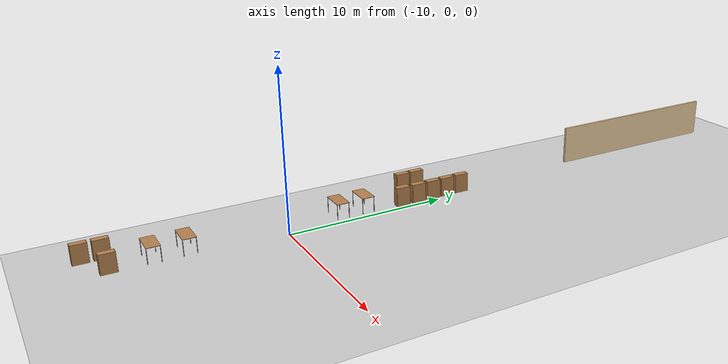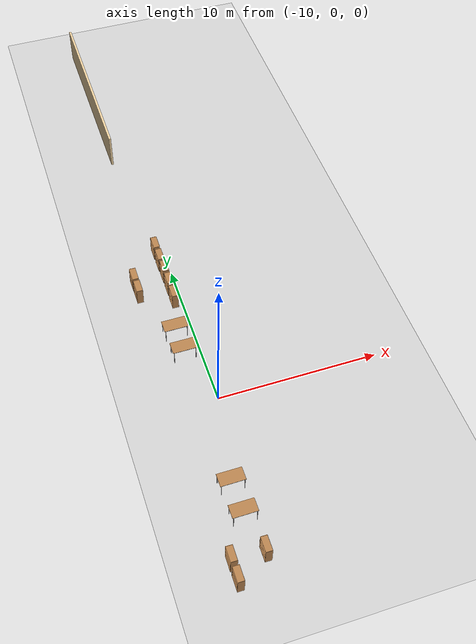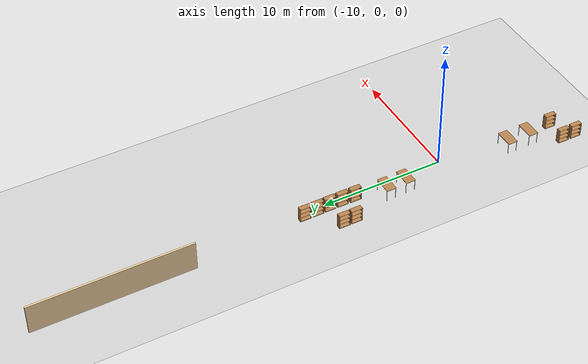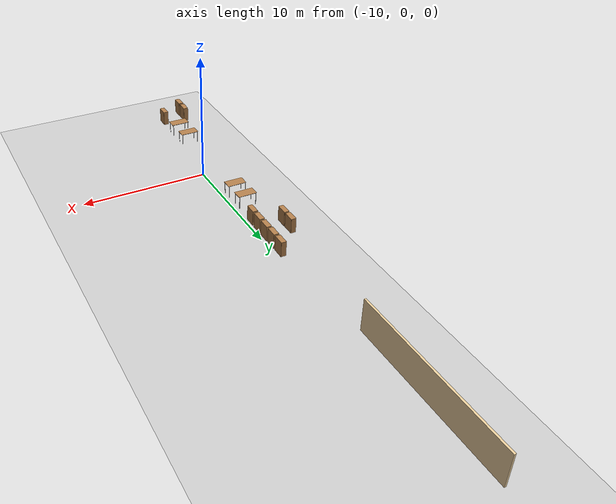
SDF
<sdf version="1.7">
 <world name="default">
  <model name="ground_plane">
   <static>1</static>
   <link name="link">
    <collision name="collision">
     <geometry><plane><normal>0 0 1</normal><size>100 100</size></plane></geometry>
     <surface>
      <contact><collide_bitmask>65535</collide_bitmask></contact>
      <friction><ode><mu>100</mu><mu2>50</mu2></ode></friction>
     </surface>
    </collision>
    <visual name="visual">
     <cast_shadows>0</cast_shadows>
     <geometry><plane><normal>0 0 1</normal><size>100 100</size></plane></geometry>
     <material>
      <script><uri>file://media/materials/scripts/gazebo.material</uri><name>Gazebo/Grey</name></script>
     </material>
    </visual>
   </link>
  </model>
  <model name="Building">
   <pose>0.746899 -1.50406 0 0 -0 1.57073</pose>
   <link name="Wall_40">
    <collision name="Wall_40_Collision">
     <geometry><box><size>12.75 0.15 2.5</size></box></geometry>
     <pose>0 0 1.25 0 -0 0</pose>
    </collision>
    <visual name="Wall_40_Visual">
     <pose>0 0 1.25 0 -0 0</pose>
     <geometry><box><size>12.75 0.15 2.5</size></box></geometry>
     <material>
      <script><uri>file://media/materials/scripts/gazebo.material</uri><name>Gazebo/Grey</name></script>
      <ambient>0.921569 0.807843 0.615686 1</ambient>
     </material>
     <meta><layer>0</layer></meta>
    </visual>
    <pose>28.9119 11.9091 0 0 -0 0</pose>
   </link>
   <static>1</static>
  </model>
  <model name="table_clone">
   <static>1</static>
   <link name="link">
    <collision name="surface">
     <pose>0 0 1 0 -0 0</pose>
     <geometry><box><size>1.5 0.8 0.03</size></box></geometry>
     <surface><friction><ode><mu>0.6</mu><mu2>0.6</mu2></ode></friction></surface>
    </collision>
    <visual name="visual1">
     <pose>0 0 1 0 -0 0</pose>
     <geometry><box><size>1.5 0.8 0.03</size></box></geometry>
     <material>
      <script><uri>file://media/materials/scripts/gazebo.material</uri><name>Gazebo/Wood</name></script>
     </material>
    </visual>
    <collision name="front_left_leg">
     <pose>0.68 0.38 0.5 0 -0 0</pose>
     <geometry><cylinder><radius>0.02</radius><length>1</length></cylinder></geometry>
    </collision>
    <visual name="front_left_leg">
     <pose>0.68 0.38 0.5 0 -0 0</pose>
     <geometry><cylinder><radius>0.02</radius><length>1</length></cylinder></geometry>
     <material>
      <script><uri>file://media/materials/scripts/gazebo.material</uri><name>Gazebo/Grey</name></script>
     </material>
    </visual>
    <collision name="front_right_leg">
     <pose>0.68 -0.38 0.5 0 -0 0</pose>
     <geometry><cylinder><radius>0.02</radius><length>1</length></cylinder></geometry>
    </collision>
    <visual name="front_right_leg">
     <pose>0.68 -0.38 0.5 0 -0 0</pose>
     <geometry><cylinder><radius>0.02</radius><length>1</length></cylinder></geometry>
     <material>
      <script><uri>file://media/materials/scripts/gazebo.material</uri><name>Gazebo/Grey</name></script>
     </material>
    </visual>
    <collision name="back_right_leg">
     <pose>-0.68 -0.38 0.5 0 -0 0</pose>
     <geometry><cylinder><radius>0.02</radius><length>1</length></cylinder></geometry>
    </collision>
    <visual name="back_right_leg">
     <pose>-0.68 -0.38 0.5 0 -0 0</pose>
     <geometry><cylinder><radius>0.02</radius><length>1</length></cylinder></geometry>
     <material>
      <script><uri>file://media/materials/scripts/gazebo.material</uri><name>Gazebo/Grey</name></script>
     </material>
    </visual>
    <collision name="back_left_leg">
     <pose>-0.68 0.38 0.5 0 -0 0</pose>
     <geometry><cylinder><radius>0.02</radius><length>1</length></cylinder></geometry>
    </collision>
    <visual name="back_left_leg">
     <pose>-0.68 0.38 0.5 0 -0 0</pose>
     <geometry><cylinder><radius>0.02</radius><length>1</length></cylinder></geometry>
     <material>
      <script><uri>file://media/materials/scripts/gazebo.material</uri><name>Gazebo/Grey</name></script>
     </material>
    </visual>
   </link>
   <pose>-11.1093 5.2986 0 0 -0 0</pose>
  </model>
  <model name="table_clone_clone_0">
   <static>1</static>
   <link name="link">
    <collision name="surface">
     <pose>0 0 1 0 -0 0</pose>
     <geometry><box><size>1.5 0.8 0.03</size></box></geometry>
     <surface><friction><ode><mu>0.6</mu><mu2>0.6</mu2></ode></friction></surface>
    </collision>
    <visual name="visual1">
     <pose>0 0 1 0 -0 0</pose>
     <geometry><box><size>1.5 0.8 0.03</size></box></geometry>
     <material>
      <script><uri>file://media/materials/scripts/gazebo.material</uri><name>Gazebo/Wood</name></script>
     </material>
    </visual>
    <collision name="front_left_leg">
     <pose>0.68 0.38 0.5 0 -0 0</pose>
     <geometry><cylinder><radius>0.02</radius><length>1</length></cylinder></geometry>
    </collision>
    <visual name="front_left_leg">
     <pose>0.68 0.38 0.5 0 -0 0</pose>
     <geometry><cylinder><radius>0.02</radius><length>1</length></cylinder></geometry>
     <material>
      <script><uri>file://media/materials/scripts/gazebo.material</uri><name>Gazebo/Grey</name></script>
     </material>
    </visual>
    <collision name="front_right_leg">
     <pose>0.68 -0.38 0.5 0 -0 0</pose>
     <geometry><cylinder><radius>0.02</radius><length>1</length></cylinder></geometry>
    </collision>
    <visual name="front_right_leg">
     <pose>0.68 -0.38 0.5 0 -0 0</pose>
     <geometry><cylinder><radius>0.02</radius><length>1</length></cylinder></geometry>
     <material>
      <script><uri>file://media/materials/scripts/gazebo.material</uri><name>Gazebo/Grey</name></script>
     </material>
    </visual>
    <collision name="back_right_leg">
     <pose>-0.68 -0.38 0.5 0 -0 0</pose>
     <geometry><cylinder><radius>0.02</radius><length>1</length></cylinder></geometry>
    </collision>
    <visual name="back_right_leg">
     <pose>-0.68 -0.38 0.5 0 -0 0</pose>
     <geometry><cylinder><radius>0.02</radius><length>1</length></cylinder></geometry>
     <material>
      <script><uri>file://media/materials/scripts/gazebo.material</uri><name>Gazebo/Grey</name></script>
     </material>
    </visual>
    <collision name="back_left_leg">
     <pose>-0.68 0.38 0.5 0 -0 0</pose>
     <geometry><cylinder><radius>0.02</radius><length>1</length></cylinder></geometry>
    </collision>
    <visual name="back_left_leg">
     <pose>-0.68 0.38 0.5 0 -0 0</pose>
     <geometry><cylinder><radius>0.02</radius><length>1</length></cylinder></geometry>
     <material>
      <script><uri>file://media/materials/scripts/gazebo.material</uri><name>Gazebo/Grey</name></script>
     </material>
    </visual>
   </link>
   <pose>-11.0696 3.6035 0 0 -0 0</pose>
  </model>
  <model name="bookshelf_clone_1_clone_clone">
   <static>1</static>
   <link name="link">
    <inertial><mass>1</mass></inertial>
    <collision name="back">
     <pose>0 0.005 0.6 0 -0 0</pose>
     <geometry><box><size>0.9 0.01 1.2</size></box></geometry>
    </collision>
    <visual name="visual1">
     <pose>0 0.005 0.6 0 -0 0</pose>
     <geometry><box><size>0.9 0.01 1.2</size></box></geometry>
     <material>
      <script><uri>file://media/materials/scripts/gazebo.material</uri><name>Gazebo/Wood</name></script>
     </material>
    </visual>
    <collision name="left_side">
     <pose>0.45 -0.195 0.6 0 -0 0</pose>
     <geometry><box><size>0.02 0.4 1.2</size></box></geometry>
    </collision>
    <visual name="visual2">
     <pose>0.45 -0.195 0.6 0 -0 0</pose>
     <geometry><box><size>0.02 0.4 1.2</size></box></geometry>
     <material>
      <script><uri>file://media/materials/scripts/gazebo.material</uri><name>Gazebo/Wood</name></script>
     </material>
    </visual>
    <collision name="right_side">
     <pose>-0.45 -0.195 0.6 0 -0 0</pose>
     <geometry><box><size>0.02 0.4 1.2</size></box></geometry>
    </collision>
    <visual name="visual3">
     <pose>-0.45 -0.195 0.6 0 -0 0</pose>
     <geometry><box><size>0.02 0.4 1.2</size></box></geometry>
     <material>
      <script><uri>file://media/materials/scripts/gazebo.material</uri><name>Gazebo/Wood</name></script>
     </material>
    </visual>
    <collision name="bottom">
     <pose>0 -0.195 0.03 0 -0 0</pose>
     <geometry><box><size>0.88 0.4 0.06</size></box></geometry>
    </collision>
    <visual name="visual4">
     <pose>0 -0.195 0.03 0 -0 0</pose>
     <geometry><box><size>0.88 0.4 0.06</size></box></geometry>
     <material>
      <script><uri>file://media/materials/scripts/gazebo.material</uri><name>Gazebo/Wood</name></script>
     </material>
    </visual>
    <collision name="top">
     <pose>0 -0.195 1.19 0 -0 0</pose>
     <geometry><box><size>0.88 0.4 0.02</size></box></geometry>
    </collision>
    <visual name="visual5">
     <pose>0 -0.195 1.19 0 -0 0</pose>
     <geometry><box><size>0.88 0.4 0.02</size></box></geometry>
     <material>
      <script><uri>file://media/materials/scripts/gazebo.material</uri><name>Gazebo/Wood</name></script>
     </material>
    </visual>
    <collision name="low_shelf">
     <pose>0 -0.195 0.43 0 -0 0</pose>
     <geometry><box><size>0.88 0.4 0.02</size></box></geometry>
    </collision>
    <visual name="visual6">
     <pose>0 -0.195 0.43 0 -0 0</pose>
     <geometry><box><size>0.88 0.4 0.02</size></box></geometry>
     <material>
      <script><uri>file://media/materials/scripts/gazebo.material</uri><name>Gazebo/Wood</name></script>
     </material>
    </visual>
    <collision name="high_shelf">
     <pose>0 -0.195 0.8 0 -0 0</pose>
     <geometry><box><size>0.88 0.4 0.02</size></box></geometry>
    </collision>
    <visual name="visual7">
     <pose>0 -0.195 0.8 0 -0 0</pose>
     <geometry><box><size>0.88 0.4 0.02</size></box></geometry>
     <material>
      <script><uri>file://media/materials/scripts/gazebo.material</uri><name>Gazebo/Wood</name></script>
     </material>
    </visual>
   </link>
   <pose>-10.3034 11.9289 0 0 0 -1.58278</pose>
  </model>
  <model name="bookshelf_clone_1_clone_clone_clone">
   <static>1</static>
   <link name="link">
    <inertial><mass>1</mass></inertial>
    <collision name="back">
     <pose>0 0.005 0.6 0 -0 0</pose>
     <geometry><box><size>0.9 0.01 1.2</size></box></geometry>
    </collision>
    <visual name="visual1">
     <pose>0 0.005 0.6 0 -0 0</pose>
     <geometry><box><size>0.9 0.01 1.2</size></box></geometry>
     <material>
      <script><uri>file://media/materials/scripts/gazebo.material</uri><name>Gazebo/Wood</name></script>
     </material>
    </visual>
    <collision name="left_side">
     <pose>0.45 -0.195 0.6 0 -0 0</pose>
     <geometry><box><size>0.02 0.4 1.2</size></box></geometry>
    </collision>
    <visual name="visual2">
     <pose>0.45 -0.195 0.6 0 -0 0</pose>
     <geometry><box><size>0.02 0.4 1.2</size></box></geometry>
     <material>
      <script><uri>file://media/materials/scripts/gazebo.material</uri><name>Gazebo/Wood</name></script>
     </material>
    </visual>
    <collision name="right_side">
     <pose>-0.45 -0.195 0.6 0 -0 0</pose>
     <geometry><box><size>0.02 0.4 1.2</size></box></geometry>
    </collision>
    <visual name="visual3">
     <pose>-0.45 -0.195 0.6 0 -0 0</pose>
     <geometry><box><size>0.02 0.4 1.2</size></box></geometry>
     <material>
      <script><uri>file://media/materials/scripts/gazebo.material</uri><name>Gazebo/Wood</name></script>
     </material>
    </visual>
    <collision name="bottom">
     <pose>0 -0.195 0.03 0 -0 0</pose>
     <geometry><box><size>0.88 0.4 0.06</size></box></geometry>
    </collision>
    <visual name="visual4">
     <pose>0 -0.195 0.03 0 -0 0</pose>
     <geometry><box><size>0.88 0.4 0.06</size></box></geometry>
     <material>
      <script><uri>file://media/materials/scripts/gazebo.material</uri><name>Gazebo/Wood</name></script>
     </material>
    </visual>
    <collision name="top">
     <pose>0 -0.195 1.19 0 -0 0</pose>
     <geometry><box><size>0.88 0.4 0.02</size></box></geometry>
    </collision>
    <visual name="visual5">
     <pose>0 -0.195 1.19 0 -0 0</pose>
     <geometry><box><size>0.88 0.4 0.02</size></box></geometry>
     <material>
      <script><uri>file://media/materials/scripts/gazebo.material</uri><name>Gazebo/Wood</name></script>
     </material>
    </visual>
    <collision name="low_shelf">
     <pose>0 -0.195 0.43 0 -0 0</pose>
     <geometry><box><size>0.88 0.4 0.02</size></box></geometry>
    </collision>
    <visual name="visual6">
     <pose>0 -0.195 0.43 0 -0 0</pose>
     <geometry><box><size>0.88 0.4 0.02</size></box></geometry>
     <material>
      <script><uri>file://media/materials/scripts/gazebo.material</uri><name>Gazebo/Wood</name></script>
     </material>
    </visual>
    <collision name="high_shelf">
     <pose>0 -0.195 0.8 0 -0 0</pose>
     <geometry><box><size>0.88 0.4 0.02</size></box></geometry>
    </collision>
    <visual name="visual7">
     <pose>0 -0.195 0.8 0 -0 0</pose>
     <geometry><box><size>0.88 0.4 0.02</size></box></geometry>
     <material>
      <script><uri>file://media/materials/scripts/gazebo.material</uri><name>Gazebo/Wood</name></script>
     </material>
    </visual>
   </link>
   <pose>-10.2991 10.867 0 0 0 -1.58278</pose>
  </model>
  <model name="bookshelf_clone_1_clone_clone_clone_0">
   <static>1</static>
   <link name="link">
    <inertial><mass>1</mass></inertial>
    <collision name="back">
     <pose>0 0.005 0.6 0 -0 0</pose>
     <geometry><box><size>0.9 0.01 1.2</size></box></geometry>
    </collision>
    <visual name="visual1">
     <pose>0 0.005 0.6 0 -0 0</pose>
     <geometry><box><size>0.9 0.01 1.2</size></box></geometry>
     <material>
      <script><uri>file://media/materials/scripts/gazebo.material</uri><name>Gazebo/Wood</name></script>
     </material>
    </visual>
    <collision name="left_side">
     <pose>0.45 -0.195 0.6 0 -0 0</pose>
     <geometry><box><size>0.02 0.4 1.2</size></box></geometry>
    </collision>
    <visual name="visual2">
     <pose>0.45 -0.195 0.6 0 -0 0</pose>
     <geometry><box><size>0.02 0.4 1.2</size></box></geometry>
     <material>
      <script><uri>file://media/materials/scripts/gazebo.material</uri><name>Gazebo/Wood</name></script>
     </material>
    </visual>
    <collision name="right_side">
     <pose>-0.45 -0.195 0.6 0 -0 0</pose>
     <geometry><box><size>0.02 0.4 1.2</size></box></geometry>
    </collision>
    <visual name="visual3">
     <pose>-0.45 -0.195 0.6 0 -0 0</pose>
     <geometry><box><size>0.02 0.4 1.2</size></box></geometry>
     <material>
      <script><uri>file://media/materials/scripts/gazebo.material</uri><name>Gazebo/Wood</name></script>
     </material>
    </visual>
    <collision name="bottom">
     <pose>0 -0.195 0.03 0 -0 0</pose>
     <geometry><box><size>0.88 0.4 0.06</size></box></geometry>
    </collision>
    <visual name="visual4">
     <pose>0 -0.195 0.03 0 -0 0</pose>
     <geometry><box><size>0.88 0.4 0.06</size></box></geometry>
     <material>
      <script><uri>file://media/materials/scripts/gazebo.material</uri><name>Gazebo/Wood</name></script>
     </material>
    </visual>
    <collision name="top">
     <pose>0 -0.195 1.19 0 -0 0</pose>
     <geometry><box><size>0.88 0.4 0.02</size></box></geometry>
    </collision>
    <visual name="visual5">
     <pose>0 -0.195 1.19 0 -0 0</pose>
     <geometry><box><size>0.88 0.4 0.02</size></box></geometry>
     <material>
      <script><uri>file://media/materials/scripts/gazebo.material</uri><name>Gazebo/Wood</name></script>
     </material>
    </visual>
    <collision name="low_shelf">
     <pose>0 -0.195 0.43 0 -0 0</pose>
     <geometry><box><size>0.88 0.4 0.02</size></box></geometry>
    </collision>
    <visual name="visual6">
     <pose>0 -0.195 0.43 0 -0 0</pose>
     <geometry><box><size>0.88 0.4 0.02</size></box></geometry>
     <material>
      <script><uri>file://media/materials/scripts/gazebo.material</uri><name>Gazebo/Wood</name></script>
     </material>
    </visual>
    <collision name="high_shelf">
     <pose>0 -0.195 0.8 0 -0 0</pose>
     <geometry><box><size>0.88 0.4 0.02</size></box></geometry>
    </collision>
    <visual name="visual7">
     <pose>0 -0.195 0.8 0 -0 0</pose>
     <geometry><box><size>0.88 0.4 0.02</size></box></geometry>
     <material>
      <script><uri>file://media/materials/scripts/gazebo.material</uri><name>Gazebo/Wood</name></script>
     </material>
    </visual>
   </link>
   <pose>-10.2834 9.83379 0 0 0 -1.58278</pose>
  </model>
  <model name="bookshelf_clone_1_clone_clone_clone_1">
   <static>1</static>
   <link name="link">
    <inertial><mass>1</mass></inertial>
    <collision name="back">
     <pose>0 0.005 0.6 0 -0 0</pose>
     <geometry><box><size>0.9 0.01 1.2</size></box></geometry>
    </collision>
    <visual name="visual1">
     <pose>0 0.005 0.6 0 -0 0</pose>
     <geometry><box><size>0.9 0.01 1.2</size></box></geometry>
     <material>
      <script><uri>file://media/materials/scripts/gazebo.material</uri><name>Gazebo/Wood</name></script>
     </material>
    </visual>
    <collision name="left_side">
     <pose>0.45 -0.195 0.6 0 -0 0</pose>
     <geometry><box><size>0.02 0.4 1.2</size></box></geometry>
    </collision>
    <visual name="visual2">
     <pose>0.45 -0.195 0.6 0 -0 0</pose>
     <geometry><box><size>0.02 0.4 1.2</size></box></geometry>
     <material>
      <script><uri>file://media/materials/scripts/gazebo.material</uri><name>Gazebo/Wood</name></script>
     </material>
    </visual>
    <collision name="right_side">
     <pose>-0.45 -0.195 0.6 0 -0 0</pose>
     <geometry><box><size>0.02 0.4 1.2</size></box></geometry>
    </collision>
    <visual name="visual3">
     <pose>-0.45 -0.195 0.6 0 -0 0</pose>
     <geometry><box><size>0.02 0.4 1.2</size></box></geometry>
     <material>
      <script><uri>file://media/materials/scripts/gazebo.material</uri><name>Gazebo/Wood</name></script>
     </material>
    </visual>
    <collision name="bottom">
     <pose>0 -0.195 0.03 0 -0 0</pose>
     <geometry><box><size>0.88 0.4 0.06</size></box></geometry>
    </collision>
    <visual name="visual4">
     <pose>0 -0.195 0.03 0 -0 0</pose>
     <geometry><box><size>0.88 0.4 0.06</size></box></geometry>
     <material>
      <script><uri>file://media/materials/scripts/gazebo.material</uri><name>Gazebo/Wood</name></script>
     </material>
    </visual>
    <collision name="top">
     <pose>0 -0.195 1.19 0 -0 0</pose>
     <geometry><box><size>0.88 0.4 0.02</size></box></geometry>
    </collision>
    <visual name="visual5">
     <pose>0 -0.195 1.19 0 -0 0</pose>
     <geometry><box><size>0.88 0.4 0.02</size></box></geometry>
     <material>
      <script><uri>file://media/materials/scripts/gazebo.material</uri><name>Gazebo/Wood</name></script>
     </material>
    </visual>
    <collision name="low_shelf">
     <pose>0 -0.195 0.43 0 -0 0</pose>
     <geometry><box><size>0.88 0.4 0.02</size></box></geometry>
    </collision>
    <visual name="visual6">
     <pose>0 -0.195 0.43 0 -0 0</pose>
     <geometry><box><size>0.88 0.4 0.02</size></box></geometry>
     <material>
      <script><uri>file://media/materials/scripts/gazebo.material</uri><name>Gazebo/Wood</name></script>
     </material>
    </visual>
    <collision name="high_shelf">
     <pose>0 -0.195 0.8 0 -0 0</pose>
     <geometry><box><size>0.88 0.4 0.02</size></box></geometry>
    </collision>
    <visual name="visual7">
     <pose>0 -0.195 0.8 0 -0 0</pose>
     <geometry><box><size>0.88 0.4 0.02</size></box></geometry>
     <material>
      <script><uri>file://media/materials/scripts/gazebo.material</uri><name>Gazebo/Wood</name></script>
     </material>
    </visual>
   </link>
   <pose>-10.2831 8.77202 0 0 0 -1.58278</pose>
  </model>
  <model name="bookshelf_clone_1_clone_clone_clone_2">
   <static>1</static>
   <link name="link">
    <inertial><mass>1</mass></inertial>
    <collision name="back">
     <pose>0 0.005 0.6 0 -0 0</pose>
     <geometry><box><size>0.9 0.01 1.2</size></box></geometry>
    </collision>
    <visual name="visual1">
     <pose>0 0.005 0.6 0 -0 0</pose>
     <geometry><box><size>0.9 0.01 1.2</size></box></geometry>
     <material>
      <script><uri>file://media/materials/scripts/gazebo.material</uri><name>Gazebo/Wood</name></script>
     </material>
    </visual>
    <collision name="left_side">
     <pose>0.45 -0.195 0.6 0 -0 0</pose>
     <geometry><box><size>0.02 0.4 1.2</size></box></geometry>
    </collision>
    <visual name="visual2">
     <pose>0.45 -0.195 0.6 0 -0 0</pose>
     <geometry><box><size>0.02 0.4 1.2</size></box></geometry>
     <material>
      <script><uri>file://media/materials/scripts/gazebo.material</uri><name>Gazebo/Wood</name></script>
     </material>
    </visual>
    <collision name="right_side">
     <pose>-0.45 -0.195 0.6 0 -0 0</pose>
     <geometry><box><size>0.02 0.4 1.2</size></box></geometry>
    </collision>
    <visual name="visual3">
     <pose>-0.45 -0.195 0.6 0 -0 0</pose>
     <geometry><box><size>0.02 0.4 1.2</size></box></geometry>
     <material>
      <script><uri>file://media/materials/scripts/gazebo.material</uri><name>Gazebo/Wood</name></script>
     </material>
    </visual>
    <collision name="bottom">
     <pose>0 -0.195 0.03 0 -0 0</pose>
     <geometry><box><size>0.88 0.4 0.06</size></box></geometry>
    </collision>
    <visual name="visual4">
     <pose>0 -0.195 0.03 0 -0 0</pose>
     <geometry><box><size>0.88 0.4 0.06</size></box></geometry>
     <material>
      <script><uri>file://media/materials/scripts/gazebo.material</uri><name>Gazebo/Wood</name></script>
     </material>
    </visual>
    <collision name="top">
     <pose>0 -0.195 1.19 0 -0 0</pose>
     <geometry><box><size>0.88 0.4 0.02</size></box></geometry>
    </collision>
    <visual name="visual5">
     <pose>0 -0.195 1.19 0 -0 0</pose>
     <geometry><box><size>0.88 0.4 0.02</size></box></geometry>
     <material>
      <script><uri>file://media/materials/scripts/gazebo.material</uri><name>Gazebo/Wood</name></script>
     </material>
    </visual>
    <collision name="low_shelf">
     <pose>0 -0.195 0.43 0 -0 0</pose>
     <geometry><box><size>0.88 0.4 0.02</size></box></geometry>
    </collision>
    <visual name="visual6">
     <pose>0 -0.195 0.43 0 -0 0</pose>
     <geometry><box><size>0.88 0.4 0.02</size></box></geometry>
     <material>
      <script><uri>file://media/materials/scripts/gazebo.material</uri><name>Gazebo/Wood</name></script>
     </material>
    </visual>
    <collision name="high_shelf">
     <pose>0 -0.195 0.8 0 -0 0</pose>
     <geometry><box><size>0.88 0.4 0.02</size></box></geometry>
    </collision>
    <visual name="visual7">
     <pose>0 -0.195 0.8 0 -0 0</pose>
     <geometry><box><size>0.88 0.4 0.02</size></box></geometry>
     <material>
      <script><uri>file://media/materials/scripts/gazebo.material</uri><name>Gazebo/Wood</name></script>
     </material>
    </visual>
   </link>
   <pose>-10.297 7.68206 0 0 0 -1.58278</pose>
  </model>
  <model name="bookshelf_clone_1_clone_clone_clone_5">
   <static>1</static>
   <link name="link">
    <inertial><mass>1</mass></inertial>
    <collision name="back">
     <pose>0 0.005 0.6 0 -0 0</pose>
     <geometry><box><size>0.9 0.01 1.2</size></box></geometry>
    </collision>
    <visual name="visual1">
     <pose>0 0.005 0.6 0 -0 0</pose>
     <geometry><box><size>0.9 0.01 1.2</size></box></geometry>
     <material>
      <script><uri>file://media/materials/scripts/gazebo.material</uri><name>Gazebo/Wood</name></script>
     </material>
    </visual>
    <collision name="left_side">
     <pose>0.45 -0.195 0.6 0 -0 0</pose>
     <geometry><box><size>0.02 0.4 1.2</size></box></geometry>
    </collision>
    <visual name="visual2">
     <pose>0.45 -0.195 0.6 0 -0 0</pose>
     <geometry><box><size>0.02 0.4 1.2</size></box></geometry>
     <material>
      <script><uri>file://media/materials/scripts/gazebo.material</uri><name>Gazebo/Wood</name></script>
     </material>
    </visual>
    <collision name="right_side">
     <pose>-0.45 -0.195 0.6 0 -0 0</pose>
     <geometry><box><size>0.02 0.4 1.2</size></box></geometry>
    </collision>
    <visual name="visual3">
     <pose>-0.45 -0.195 0.6 0 -0 0</pose>
     <geometry><box><size>0.02 0.4 1.2</size></box></geometry>
     <material>
      <script><uri>file://media/materials/scripts/gazebo.material</uri><name>Gazebo/Wood</name></script>
     </material>
    </visual>
    <collision name="bottom">
     <pose>0 -0.195 0.03 0 -0 0</pose>
     <geometry><box><size>0.88 0.4 0.06</size></box></geometry>
    </collision>
    <visual name="visual4">
     <pose>0 -0.195 0.03 0 -0 0</pose>
     <geometry><box><size>0.88 0.4 0.06</size></box></geometry>
     <material>
      <script><uri>file://media/materials/scripts/gazebo.material</uri><name>Gazebo/Wood</name></script>
     </material>
    </visual>
    <collision name="top">
     <pose>0 -0.195 1.19 0 -0 0</pose>
     <geometry><box><size>0.88 0.4 0.02</size></box></geometry>
    </collision>
    <visual name="visual5">
     <pose>0 -0.195 1.19 0 -0 0</pose>
     <geometry><box><size>0.88 0.4 0.02</size></box></geometry>
     <material>
      <script><uri>file://media/materials/scripts/gazebo.material</uri><name>Gazebo/Wood</name></script>
     </material>
    </visual>
    <collision name="low_shelf">
     <pose>0 -0.195 0.43 0 -0 0</pose>
     <geometry><box><size>0.88 0.4 0.02</size></box></geometry>
    </collision>
    <visual name="visual6">
     <pose>0 -0.195 0.43 0 -0 0</pose>
     <geometry><box><size>0.88 0.4 0.02</size></box></geometry>
     <material>
      <script><uri>file://media/materials/scripts/gazebo.material</uri><name>Gazebo/Wood</name></script>
     </material>
    </visual>
    <collision name="high_shelf">
     <pose>0 -0.195 0.8 0 -0 0</pose>
     <geometry><box><size>0.88 0.4 0.02</size></box></geometry>
    </collision>
    <visual name="visual7">
     <pose>0 -0.195 0.8 0 -0 0</pose>
     <geometry><box><size>0.88 0.4 0.02</size></box></geometry>
     <material>
      <script><uri>file://media/materials/scripts/gazebo.material</uri><name>Gazebo/Wood</name></script>
     </material>
    </visual>
   </link>
   <pose>-12.3118 9.76746 0 0 0 -1.58278</pose>
  </model>
  <model name="bookshelf_clone_1_clone_clone_clone_6">
   <static>1</static>
   <link name="link">
    <inertial><mass>1</mass></inertial>
    <collision name="back">
     <pose>0 0.005 0.6 0 -0 0</pose>
     <geometry><box><size>0.9 0.01 1.2</size></box></geometry>
    </collision>
    <visual name="visual1">
     <pose>0 0.005 0.6 0 -0 0</pose>
     <geometry><box><size>0.9 0.01 1.2</size></box></geometry>
     <material>
      <script><uri>file://media/materials/scripts/gazebo.material</uri><name>Gazebo/Wood</name></script>
     </material>
    </visual>
    <collision name="left_side">
     <pose>0.45 -0.195 0.6 0 -0 0</pose>
     <geometry><box><size>0.02 0.4 1.2</size></box></geometry>
    </collision>
    <visual name="visual2">
     <pose>0.45 -0.195 0.6 0 -0 0</pose>
     <geometry><box><size>0.02 0.4 1.2</size></box></geometry>
     <material>
      <script><uri>file://media/materials/scripts/gazebo.material</uri><name>Gazebo/Wood</name></script>
     </material>
    </visual>
    <collision name="right_side">
     <pose>-0.45 -0.195 0.6 0 -0 0</pose>
     <geometry><box><size>0.02 0.4 1.2</size></box></geometry>
    </collision>
    <visual name="visual3">
     <pose>-0.45 -0.195 0.6 0 -0 0</pose>
     <geometry><box><size>0.02 0.4 1.2</size></box></geometry>
     <material>
      <script><uri>file://media/materials/scripts/gazebo.material</uri><name>Gazebo/Wood</name></script>
     </material>
    </visual>
    <collision name="bottom">
     <pose>0 -0.195 0.03 0 -0 0</pose>
     <geometry><box><size>0.88 0.4 0.06</size></box></geometry>
    </collision>
    <visual name="visual4">
     <pose>0 -0.195 0.03 0 -0 0</pose>
     <geometry><box><size>0.88 0.4 0.06</size></box></geometry>
     <material>
      <script><uri>file://media/materials/scripts/gazebo.material</uri><name>Gazebo/Wood</name></script>
     </material>
    </visual>
    <collision name="top">
     <pose>0 -0.195 1.19 0 -0 0</pose>
     <geometry><box><size>0.88 0.4 0.02</size></box></geometry>
    </collision>
    <visual name="visual5">
     <pose>0 -0.195 1.19 0 -0 0</pose>
     <geometry><box><size>0.88 0.4 0.02</size></box></geometry>
     <material>
      <script><uri>file://media/materials/scripts/gazebo.material</uri><name>Gazebo/Wood</name></script>
     </material>
    </visual>
    <collision name="low_shelf">
     <pose>0 -0.195 0.43 0 -0 0</pose>
     <geometry><box><size>0.88 0.4 0.02</size></box></geometry>
    </collision>
    <visual name="visual6">
     <pose>0 -0.195 0.43 0 -0 0</pose>
     <geometry><box><size>0.88 0.4 0.02</size></box></geometry>
     <material>
      <script><uri>file://media/materials/scripts/gazebo.material</uri><name>Gazebo/Wood</name></script>
     </material>
    </visual>
    <collision name="high_shelf">
     <pose>0 -0.195 0.8 0 -0 0</pose>
     <geometry><box><size>0.88 0.4 0.02</size></box></geometry>
    </collision>
    <visual name="visual7">
     <pose>0 -0.195 0.8 0 -0 0</pose>
     <geometry><box><size>0.88 0.4 0.02</size></box></geometry>
     <material>
      <script><uri>file://media/materials/scripts/gazebo.material</uri><name>Gazebo/Wood</name></script>
     </material>
    </visual>
   </link>
   <pose>-12.3104 8.74779 0 0 0 -1.58278</pose>
  </model>
  <model name="bookshelf_clone_1_clone_clone_clone_13">
   <static>1</static>
   <link name="link">
    <inertial><mass>1</mass></inertial>
    <collision name="back">
     <pose>0 0.005 0.6 0 -0 0</pose>
     <geometry><box><size>0.9 0.01 1.2</size></box></geometry>
    </collision>
    <visual name="visual1">
     <pose>0 0.005 0.6 0 -0 0</pose>
     <geometry><box><size>0.9 0.01 1.2</size></box></geometry>
     <material>
      <script><uri>file://media/materials/scripts/gazebo.material</uri><name>Gazebo/Wood</name></script>
     </material>
    </visual>
    <collision name="left_side">
     <pose>0.45 -0.195 0.6 0 -0 0</pose>
     <geometry><box><size>0.02 0.4 1.2</size></box></geometry>
    </collision>
    <visual name="visual2">
     <pose>0.45 -0.195 0.6 0 -0 0</pose>
     <geometry><box><size>0.02 0.4 1.2</size></box></geometry>
     <material>
      <script><uri>file://media/materials/scripts/gazebo.material</uri><name>Gazebo/Wood</name></script>
     </material>
    </visual>
    <collision name="right_side">
     <pose>-0.45 -0.195 0.6 0 -0 0</pose>
     <geometry><box><size>0.02 0.4 1.2</size></box></geometry>
    </collision>
    <visual name="visual3">
     <pose>-0.45 -0.195 0.6 0 -0 0</pose>
     <geometry><box><size>0.02 0.4 1.2</size></box></geometry>
     <material>
      <script><uri>file://media/materials/scripts/gazebo.material</uri><name>Gazebo/Wood</name></script>
     </material>
    </visual>
    <collision name="bottom">
     <pose>0 -0.195 0.03 0 -0 0</pose>
     <geometry><box><size>0.88 0.4 0.06</size></box></geometry>
    </collision>
    <visual name="visual4">
     <pose>0 -0.195 0.03 0 -0 0</pose>
     <geometry><box><size>0.88 0.4 0.06</size></box></geometry>
     <material>
      <script><uri>file://media/materials/scripts/gazebo.material</uri><name>Gazebo/Wood</name></script>
     </material>
    </visual>
    <collision name="top">
     <pose>0 -0.195 1.19 0 -0 0</pose>
     <geometry><box><size>0.88 0.4 0.02</size></box></geometry>
    </collision>
    <visual name="visual5">
     <pose>0 -0.195 1.19 0 -0 0</pose>
     <geometry><box><size>0.88 0.4 0.02</size></box></geometry>
     <material>
      <script><uri>file://media/materials/scripts/gazebo.material</uri><name>Gazebo/Wood</name></script>
     </material>
    </visual>
    <collision name="low_shelf">
     <pose>0 -0.195 0.43 0 -0 0</pose>
     <geometry><box><size>0.88 0.4 0.02</size></box></geometry>
    </collision>
    <visual name="visual6">
     <pose>0 -0.195 0.43 0 -0 0</pose>
     <geometry><box><size>0.88 0.4 0.02</size></box></geometry>
     <material>
      <script><uri>file://media/materials/scripts/gazebo.material</uri><name>Gazebo/Wood</name></script>
     </material>
    </visual>
    <collision name="high_shelf">
     <pose>0 -0.195 0.8 0 -0 0</pose>
     <geometry><box><size>0.88 0.4 0.02</size></box></geometry>
    </collision>
    <visual name="visual7">
     <pose>0 -0.195 0.8 0 -0 0</pose>
     <geometry><box><size>0.88 0.4 0.02</size></box></geometry>
     <material>
      <script><uri>file://media/materials/scripts/gazebo.material</uri><name>Gazebo/Wood</name></script>
     </material>
    </visual>
   </link>
   <pose>-10.4044 -9.89003 0 0 0 -1.58278</pose>
  </model>
  <model name="table_clone_clone_2">
   <static>1</static>
   <link name="link">
    <collision name="surface">
     <pose>0 0 1 0 -0 0</pose>
     <geometry><box><size>1.5 0.8 0.03</size></box></geometry>
     <surface><friction><ode><mu>0.6</mu><mu2>0.6</mu2></ode></friction></surface>
    </collision>
    <visual name="visual1">
     <pose>0 0 1 0 -0 0</pose>
     <geometry><box><size>1.5 0.8 0.03</size></box></geometry>
     <material>
      <script><uri>file://media/materials/scripts/gazebo.material</uri><name>Gazebo/Wood</name></script>
     </material>
    </visual>
    <collision name="front_left_leg">
     <pose>0.68 0.38 0.5 0 -0 0</pose>
     <geometry><cylinder><radius>0.02</radius><length>1</length></cylinder></geometry>
    </collision>
    <visual name="front_left_leg">
     <pose>0.68 0.38 0.5 0 -0 0</pose>
     <geometry><cylinder><radius>0.02</radius><length>1</length></cylinder></geometry>
     <material>
      <script><uri>file://media/materials/scripts/gazebo.material</uri><name>Gazebo/Grey</name></script>
     </material>
    </visual>
    <collision name="front_right_leg">
     <pose>0.68 -0.38 0.5 0 -0 0</pose>
     <geometry><cylinder><radius>0.02</radius><length>1</length></cylinder></geometry>
    </collision>
    <visual name="front_right_leg">
     <pose>0.68 -0.38 0.5 0 -0 0</pose>
     <geometry><cylinder><radius>0.02</radius><length>1</length></cylinder></geometry>
     <material>
      <script><uri>file://media/materials/scripts/gazebo.material</uri><name>Gazebo/Grey</name></script>
     </material>
    </visual>
    <collision name="back_right_leg">
     <pose>-0.68 -0.38 0.5 0 -0 0</pose>
     <geometry><cylinder><radius>0.02</radius><length>1</length></cylinder></geometry>
    </collision>
    <visual name="back_right_leg">
     <pose>-0.68 -0.38 0.5 0 -0 0</pose>
     <geometry><cylinder><radius>0.02</radius><length>1</length></cylinder></geometry>
     <material>
      <script><uri>file://media/materials/scripts/gazebo.material</uri><name>Gazebo/Grey</name></script>
     </material>
    </visual>
    <collision name="back_left_leg">
     <pose>-0.68 0.38 0.5 0 -0 0</pose>
     <geometry><cylinder><radius>0.02</radius><length>1</length></cylinder></geometry>
    </collision>
    <visual name="back_left_leg">
     <pose>-0.68 0.38 0.5 0 -0 0</pose>
     <geometry><cylinder><radius>0.02</radius><length>1</length></cylinder></geometry>
     <material>
      <script><uri>file://media/materials/scripts/gazebo.material</uri><name>Gazebo/Grey</name></script>
     </material>
    </visual>
   </link>
   <pose>-11.1008 -5.58981 0 0 -0 0</pose>
  </model>
  <model name="table_clone_clone_2_clone">
   <static>1</static>
   <link name="link">
    <collision name="surface">
     <pose>0 0 1 0 -0 0</pose>
     <geometry><box><size>1.5 0.8 0.03</size></box></geometry>
     <surface><friction><ode><mu>0.6</mu><mu2>0.6</mu2></ode></friction></surface>
    </collision>
    <visual name="visual1">
     <pose>0 0 1 0 -0 0</pose>
     <geometry><box><size>1.5 0.8 0.03</size></box></geometry>
     <material>
      <script><uri>file://media/materials/scripts/gazebo.material</uri><name>Gazebo/Wood</name></script>
     </material>
    </visual>
    <collision name="front_left_leg">
     <pose>0.68 0.38 0.5 0 -0 0</pose>
     <geometry><cylinder><radius>0.02</radius><length>1</length></cylinder></geometry>
    </collision>
    <visual name="front_left_leg">
     <pose>0.68 0.38 0.5 0 -0 0</pose>
     <geometry><cylinder><radius>0.02</radius><length>1</length></cylinder></geometry>
     <material>
      <script><uri>file://media/materials/scripts/gazebo.material</uri><name>Gazebo/Grey</name></script>
     </material>
    </visual>
    <collision name="front_right_leg">
     <pose>0.68 -0.38 0.5 0 -0 0</pose>
     <geometry><cylinder><radius>0.02</radius><length>1</length></cylinder></geometry>
    </collision>
    <visual name="front_right_leg">
     <pose>0.68 -0.38 0.5 0 -0 0</pose>
     <geometry><cylinder><radius>0.02</radius><length>1</length></cylinder></geometry>
     <material>
      <script><uri>file://media/materials/scripts/gazebo.material</uri><name>Gazebo/Grey</name></script>
     </material>
    </visual>
    <collision name="back_right_leg">
     <pose>-0.68 -0.38 0.5 0 -0 0</pose>
     <geometry><cylinder><radius>0.02</radius><length>1</length></cylinder></geometry>
    </collision>
    <visual name="back_right_leg">
     <pose>-0.68 -0.38 0.5 0 -0 0</pose>
     <geometry><cylinder><radius>0.02</radius><length>1</length></cylinder></geometry>
     <material>
      <script><uri>file://media/materials/scripts/gazebo.material</uri><name>Gazebo/Grey</name></script>
     </material>
    </visual>
    <collision name="back_left_leg">
     <pose>-0.68 0.38 0.5 0 -0 0</pose>
     <geometry><cylinder><radius>0.02</radius><length>1</length></cylinder></geometry>
    </collision>
    <visual name="back_left_leg">
     <pose>-0.68 0.38 0.5 0 -0 0</pose>
     <geometry><cylinder><radius>0.02</radius><length>1</length></cylinder></geometry>
     <material>
      <script><uri>file://media/materials/scripts/gazebo.material</uri><name>Gazebo/Grey</name></script>
     </material>
    </visual>
   </link>
   <pose>-11.062 -7.54307 0 0 -0 0</pose>
  </model>
  <model name="bookshelf_clone_1_clone_clone_clone_13_clone_4">
   <static>1</static>
   <link name="link">
    <inertial><mass>1</mass></inertial>
    <collision name="back">
     <pose>0 0.005 0.6 0 -0 0</pose>
     <geometry><box><size>0.9 0.01 1.2</size></box></geometry>
    </collision>
    <visual name="visual1">
     <pose>0 0.005 0.6 0 -0 0</pose>
     <geometry><box><size>0.9 0.01 1.2</size></box></geometry>
     <material>
      <script><uri>file://media/materials/scripts/gazebo.material</uri><name>Gazebo/Wood</name></script>
     </material>
    </visual>
    <collision name="left_side">
     <pose>0.45 -0.195 0.6 0 -0 0</pose>
     <geometry><box><size>0.02 0.4 1.2</size></box></geometry>
    </collision>
    <visual name="visual2">
     <pose>0.45 -0.195 0.6 0 -0 0</pose>
     <geometry><box><size>0.02 0.4 1.2</size></box></geometry>
     <material>
      <script><uri>file://media/materials/scripts/gazebo.material</uri><name>Gazebo/Wood</name></script>
     </material>
    </visual>
    <collision name="right_side">
     <pose>-0.45 -0.195 0.6 0 -0 0</pose>
     <geometry><box><size>0.02 0.4 1.2</size></box></geometry>
    </collision>
    <visual name="visual3">
     <pose>-0.45 -0.195 0.6 0 -0 0</pose>
     <geometry><box><size>0.02 0.4 1.2</size></box></geometry>
     <material>
      <script><uri>file://media/materials/scripts/gazebo.material</uri><name>Gazebo/Wood</name></script>
     </material>
    </visual>
    <collision name="bottom">
     <pose>0 -0.195 0.03 0 -0 0</pose>
     <geometry><box><size>0.88 0.4 0.06</size></box></geometry>
    </collision>
    <visual name="visual4">
     <pose>0 -0.195 0.03 0 -0 0</pose>
     <geometry><box><size>0.88 0.4 0.06</size></box></geometry>
     <material>
      <script><uri>file://media/materials/scripts/gazebo.material</uri><name>Gazebo/Wood</name></script>
     </material>
    </visual>
    <collision name="top">
     <pose>0 -0.195 1.19 0 -0 0</pose>
     <geometry><box><size>0.88 0.4 0.02</size></box></geometry>
    </collision>
    <visual name="visual5">
     <pose>0 -0.195 1.19 0 -0 0</pose>
     <geometry><box><size>0.88 0.4 0.02</size></box></geometry>
     <material>
      <script><uri>file://media/materials/scripts/gazebo.material</uri><name>Gazebo/Wood</name></script>
     </material>
    </visual>
    <collision name="low_shelf">
     <pose>0 -0.195 0.43 0 -0 0</pose>
     <geometry><box><size>0.88 0.4 0.02</size></box></geometry>
    </collision>
    <visual name="visual6">
     <pose>0 -0.195 0.43 0 -0 0</pose>
     <geometry><box><size>0.88 0.4 0.02</size></box></geometry>
     <material>
      <script><uri>file://media/materials/scripts/gazebo.material</uri><name>Gazebo/Wood</name></script>
     </material>
    </visual>
    <collision name="high_shelf">
     <pose>0 -0.195 0.8 0 -0 0</pose>
     <geometry><box><size>0.88 0.4 0.02</size></box></geometry>
    </collision>
    <visual name="visual7">
     <pose>0 -0.195 0.8 0 -0 0</pose>
     <geometry><box><size>0.88 0.4 0.02</size></box></geometry>
     <material>
      <script><uri>file://media/materials/scripts/gazebo.material</uri><name>Gazebo/Wood</name></script>
     </material>
    </visual>
   </link>
   <pose>-12.3079 -9.83646 0 0 0 -1.58278</pose>
  </model>
  <model name="bookshelf_clone_1_clone_clone_clone_13_clone_4_clone">
   <static>1</static>
   <link name="link">
    <inertial><mass>1</mass></inertial>
    <collision name="back">
     <pose>0 0.005 0.6 0 -0 0</pose>
     <geometry><box><size>0.9 0.01 1.2</size></box></geometry>
    </collision>
    <visual name="visual1">
     <pose>0 0.005 0.6 0 -0 0</pose>
     <geometry><box><size>0.9 0.01 1.2</size></box></geometry>
     <material>
      <script><uri>file://media/materials/scripts/gazebo.material</uri><name>Gazebo/Wood</name></script>
     </material>
    </visual>
    <collision name="left_side">
     <pose>0.45 -0.195 0.6 0 -0 0</pose>
     <geometry><box><size>0.02 0.4 1.2</size></box></geometry>
    </collision>
    <visual name="visual2">
     <pose>0.45 -0.195 0.6 0 -0 0</pose>
     <geometry><box><size>0.02 0.4 1.2</size></box></geometry>
     <material>
      <script><uri>file://media/materials/scripts/gazebo.material</uri><name>Gazebo/Wood</name></script>
     </material>
    </visual>
    <collision name="right_side">
     <pose>-0.45 -0.195 0.6 0 -0 0</pose>
     <geometry><box><size>0.02 0.4 1.2</size></box></geometry>
    </collision>
    <visual name="visual3">
     <pose>-0.45 -0.195 0.6 0 -0 0</pose>
     <geometry><box><size>0.02 0.4 1.2</size></box></geometry>
     <material>
      <script><uri>file://media/materials/scripts/gazebo.material</uri><name>Gazebo/Wood</name></script>
     </material>
    </visual>
    <collision name="bottom">
     <pose>0 -0.195 0.03 0 -0 0</pose>
     <geometry><box><size>0.88 0.4 0.06</size></box></geometry>
    </collision>
    <visual name="visual4">
     <pose>0 -0.195 0.03 0 -0 0</pose>
     <geometry><box><size>0.88 0.4 0.06</size></box></geometry>
     <material>
      <script><uri>file://media/materials/scripts/gazebo.material</uri><name>Gazebo/Wood</name></script>
     </material>
    </visual>
    <collision name="top">
     <pose>0 -0.195 1.19 0 -0 0</pose>
     <geometry><box><size>0.88 0.4 0.02</size></box></geometry>
    </collision>
    <visual name="visual5">
     <pose>0 -0.195 1.19 0 -0 0</pose>
     <geometry><box><size>0.88 0.4 0.02</size></box></geometry>
     <material>
      <script><uri>file://media/materials/scripts/gazebo.material</uri><name>Gazebo/Wood</name></script>
     </material>
    </visual>
    <collision name="low_shelf">
     <pose>0 -0.195 0.43 0 -0 0</pose>
     <geometry><box><size>0.88 0.4 0.02</size></box></geometry>
    </collision>
    <visual name="visual6">
     <pose>0 -0.195 0.43 0 -0 0</pose>
     <geometry><box><size>0.88 0.4 0.02</size></box></geometry>
     <material>
      <script><uri>file://media/materials/scripts/gazebo.material</uri><name>Gazebo/Wood</name></script>
     </material>
    </visual>
    <collision name="high_shelf">
     <pose>0 -0.195 0.8 0 -0 0</pose>
     <geometry><box><size>0.88 0.4 0.02</size></box></geometry>
    </collision>
    <visual name="visual7">
     <pose>0 -0.195 0.8 0 -0 0</pose>
     <geometry><box><size>0.88 0.4 0.02</size></box></geometry>
     <material>
      <script><uri>file://media/materials/scripts/gazebo.material</uri><name>Gazebo/Wood</name></script>
     </material>
    </visual>
   </link>
   <pose>-12.3089 -10.965 0 0 0 -1.58278</pose>
  </model>
 </world>
</sdf>
